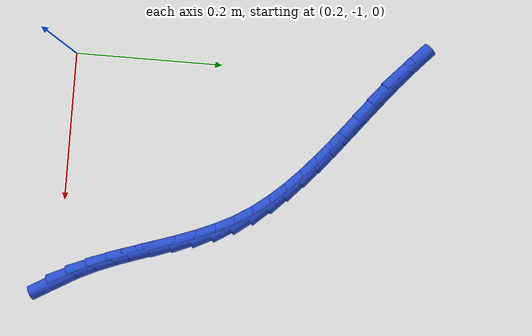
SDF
<sdf version="1.6">
 <world name="default">
  <model name="ground_plane">
   <static>1</static>
   <link name="link">
    <collision name="collision">
     <geometry><plane><normal>0 0 1</normal><size>100 100</size></plane></geometry>
     <surface><friction><ode><mu>100</mu><mu2>50</mu2></ode></friction></surface>
    </collision>
    <visual name="visual">
     <cast_shadows>0</cast_shadows>
     <geometry><plane><normal>0 0 1</normal><size>100 100</size></plane></geometry>
     <material>
      <script><uri>file://media/materials/scripts/gazebo.material</uri><name>Gazebo/WhiteGlow</name></script>
     </material>
    </visual>
   </link>
  </model>
  <model name="line">
   <link name="link_209">
    <pose>0.5097551487673551 -0.9991958877958447 0.01 0 1.57 -1.0467026871794707</pose>
    <collision name="collision">
     <geometry><cylinder><radius>0.01</radius><length>0.08</length></cylinder></geometry>
    </collision>
    <visual name="visual">
     <material>
      <script><name>Gazebo/Blue</name><uri>file://media/materials/scripts/gazebo.material</uri></script>
     </material>
     <geometry><cylinder><radius>0.01</radius><length>0.08</length></cylinder></geometry>
    </visual>
   </link>
   <link name="link_210">
    <pose>0.4956999686192209 -0.974879399457343 0.01 0 1.57 -1.1315190138815088</pose>
    <collision name="collision">
     <geometry><cylinder><radius>0.01</radius><length>0.08</length></cylinder></geometry>
    </collision>
    <visual name="visual">
     <material>
      <script><name>Gazebo/Blue</name><uri>file://media/materials/scripts/gazebo.material</uri></script>
     </material>
     <geometry><cylinder><radius>0.01</radius><length>0.08</length></cylinder></geometry>
    </visual>
   </link>
   <link name="link_211">
    <pose>0.4836788727896679 -0.949297046166394 0.01 0 1.57 -1.1930870745688233</pose>
    <collision name="collision">
     <geometry><cylinder><radius>0.01</radius><length>0.08</length></cylinder></geometry>
    </collision>
    <visual name="visual">
     <material>
      <script><name>Gazebo/Blue</name><uri>file://media/materials/scripts/gazebo.material</uri></script>
     </material>
     <geometry><cylinder><radius>0.01</radius><length>0.08</length></cylinder></geometry>
    </visual>
   </link>
   <link name="link_212">
    <pose>0.4731632100218835 -0.9227931382135477 0.01 0 1.57 -1.232133405977869</pose>
    <collision name="collision">
     <geometry><cylinder><radius>0.01</radius><length>0.08</length></cylinder></geometry>
    </collision>
    <visual name="visual">
     <material>
      <script><name>Gazebo/Blue</name><uri>file://media/materials/scripts/gazebo.material</uri></script>
     </material>
     <geometry><cylinder><radius>0.01</radius><length>0.08</length></cylinder></geometry>
    </visual>
   </link>
   <link name="link_213">
    <pose>0.4636243290590552 -0.8957119858893531 0.01 0 1.57 -1.2495053327067944</pose>
    <collision name="collision">
     <geometry><cylinder><radius>0.01</radius><length>0.08</length></cylinder></geometry>
    </collision>
    <visual name="visual">
     <material>
      <script><name>Gazebo/Blue</name><uri>file://media/materials/scripts/gazebo.material</uri></script>
     </material>
     <geometry><cylinder><radius>0.01</radius><length>0.08</length></cylinder></geometry>
    </visual>
   </link>
   <link name="link_214">
    <pose>0.4545335786443703 -0.8683978994843604 0.01 0 1.57 -1.2456187619635584</pose>
    <collision name="collision">
     <geometry><cylinder><radius>0.01</radius><length>0.08</length></cylinder></geometry>
    </collision>
    <visual name="visual">
     <material>
      <script><name>Gazebo/Blue</name><uri>file://media/materials/scripts/gazebo.material</uri></script>
     </material>
     <geometry><cylinder><radius>0.01</radius><length>0.08</length></cylinder></geometry>
    </visual>
   </link>
   <link name="link_215">
    <pose>0.44536230752101613 -0.8411951892891182 0.01 0 1.57 -1.220235018143926</pose>
    <collision name="collision">
     <geometry><cylinder><radius>0.01</radius><length>0.08</length></cylinder></geometry>
    </collision>
    <visual name="visual">
     <material>
      <script><name>Gazebo/Blue</name><uri>file://media/materials/scripts/gazebo.material</uri></script>
     </material>
     <geometry><cylinder><radius>0.01</radius><length>0.08</length></cylinder></geometry>
    </visual>
   </link>
   <link name="link_216">
    <pose>0.43558186443218044 -0.8144481655941768 0.01 0 1.57 -1.1724964323895928</pose>
    <collision name="collision">
     <geometry><cylinder><radius>0.01</radius><length>0.08</length></cylinder></geometry>
    </collision>
    <visual name="visual">
     <material>
      <script><name>Gazebo/Blue</name><uri>file://media/materials/scripts/gazebo.material</uri></script>
     </material>
     <geometry><cylinder><radius>0.01</radius><length>0.08</length></cylinder></geometry>
    </visual>
   </link>
   <link name="link_217">
    <pose>0.42466359812105037 -0.7885011386900852 0.01 0 1.57 -1.1012513638491461</pose>
    <collision name="collision">
     <geometry><cylinder><radius>0.01</radius><length>0.08</length></cylinder></geometry>
    </collision>
    <visual name="visual">
     <material>
      <script><name>Gazebo/Blue</name><uri>file://media/materials/scripts/gazebo.material</uri></script>
     </material>
     <geometry><cylinder><radius>0.01</radius><length>0.08</length></cylinder></geometry>
    </visual>
   </link>
   <link name="link_218">
    <pose>0.4120788573308135 -0.7636984188673928 0.01 0 1.57 -1.0089882269407238</pose>
    <collision name="collision">
     <geometry><cylinder><radius>0.01</radius><length>0.08</length></cylinder></geometry>
    </collision>
    <visual name="visual">
     <material>
      <script><name>Gazebo/Blue</name><uri>file://media/materials/scripts/gazebo.material</uri></script>
     </material>
     <geometry><cylinder><radius>0.01</radius><length>0.08</length></cylinder></geometry>
    </visual>
   </link>
   <link name="link_219">
    <pose>0.3973725271411363 -0.740335427469929 0.01 0 1.57 -0.9193255401807787</pose>
    <collision name="collision">
     <geometry><cylinder><radius>0.01</radius><length>0.08</length></cylinder></geometry>
    </collision>
    <visual name="visual">
     <material>
      <script><name>Gazebo/Blue</name><uri>file://media/materials/scripts/gazebo.material</uri></script>
     </material>
     <geometry><cylinder><radius>0.01</radius><length>0.08</length></cylinder></geometry>
    </visual>
   </link>
   <link name="link_220">
    <pose>0.38061453007004103 -0.7183585267425914 0.01 0 1.57 -0.8434583693113058</pose>
    <collision name="collision">
     <geometry><cylinder><radius>0.01</radius><length>0.08</length></cylinder></geometry>
    </collision>
    <visual name="visual">
     <material>
      <script><name>Gazebo/Blue</name><uri>file://media/materials/scripts/gazebo.material</uri></script>
     </material>
     <geometry><cylinder><radius>0.01</radius><length>0.08</length></cylinder></geometry>
    </visual>
   </link>
   <link name="link_221">
    <pose>0.3621030844040438 -0.6975623017246586 0.01 0 1.57 -0.7817750198654875</pose>
    <collision name="collision">
     <geometry><cylinder><radius>0.01</radius><length>0.08</length></cylinder></geometry>
    </collision>
    <visual name="visual">
     <material>
      <script><name>Gazebo/Blue</name><uri>file://media/materials/scripts/gazebo.material</uri></script>
     </material>
     <geometry><cylinder><radius>0.01</radius><length>0.08</length></cylinder></geometry>
    </visual>
   </link>
   <link name="link_222">
    <pose>0.3421373429879015 -0.677740716135795 0.01 0 1.57 -0.7339697446912747</pose>
    <collision name="collision">
     <geometry><cylinder><radius>0.01</radius><length>0.08</length></cylinder></geometry>
    </collision>
    <visual name="visual">
     <material>
      <script><name>Gazebo/Blue</name><uri>file://media/materials/scripts/gazebo.material</uri></script>
     </material>
     <geometry><cylinder><radius>0.01</radius><length>0.08</length></cylinder></geometry>
    </visual>
   </link>
   <link name="link_223">
    <pose>0.3210164586663712 -0.6586877336956667 0.01 0 1.57 -0.6994553997798755</pose>
    <collision name="collision">
     <geometry><cylinder><radius>0.01</radius><length>0.08</length></cylinder></geometry>
    </collision>
    <visual name="visual">
     <material>
      <script><name>Gazebo/Blue</name><uri>file://media/materials/scripts/gazebo.material</uri></script>
     </material>
     <geometry><cylinder><radius>0.01</radius><length>0.08</length></cylinder></geometry>
    </visual>
   </link>
   <link name="link_224">
    <pose>0.29903958428420985 -0.6401973181239382 0.01 0 1.57 -0.6776273634613164</pose>
    <collision name="collision">
     <geometry><cylinder><radius>0.01</radius><length>0.08</length></cylinder></geometry>
    </collision>
    <visual name="visual">
     <material>
      <script><name>Gazebo/Blue</name><uri>file://media/materials/scripts/gazebo.material</uri></script>
     </material>
     <geometry><cylinder><radius>0.01</radius><length>0.08</length></cylinder></geometry>
    </visual>
   </link>
   <link name="link_225">
    <pose>0.2765058726861747 -0.6220634331402756 0.01 0 1.57 -0.6680240232151223</pose>
    <collision name="collision">
     <geometry><cylinder><radius>0.01</radius><length>0.08</length></cylinder></geometry>
    </collision>
    <visual name="visual">
     <material>
      <script><name>Gazebo/Blue</name><uri>file://media/materials/scripts/gazebo.material</uri></script>
     </material>
     <geometry><cylinder><radius>0.01</radius><length>0.08</length></cylinder></geometry>
    </visual>
   </link>
   <link name="link_226">
    <pose>0.2537144767170226 -0.6040800424643437 0.01 0 1.57 -0.6704105578157536</pose>
    <collision name="collision">
     <geometry><cylinder><radius>0.01</radius><length>0.08</length></cylinder></geometry>
    </collision>
    <visual name="visual">
     <material>
      <script><name>Gazebo/Blue</name><uri>file://media/materials/scripts/gazebo.material</uri></script>
     </material>
     <geometry><cylinder><radius>0.01</radius><length>0.08</length></cylinder></geometry>
    </visual>
   </link>
   <link name="link_227">
    <pose>0.23096454922151086 -0.5860411098158084 0.01 0 1.57 -0.6848099360876642</pose>
    <collision name="collision">
     <geometry><cylinder><radius>0.01</radius><length>0.08</length></cylinder></geometry>
    </collision>
    <visual name="visual">
     <material>
      <script><name>Gazebo/Blue</name><uri>file://media/materials/scripts/gazebo.material</uri></script>
     </material>
     <geometry><cylinder><radius>0.01</radius><length>0.08</length></cylinder></geometry>
    </visual>
   </link>
   <link name="link_228">
    <pose>0.2085552430443963 -0.5677405989143345 0.01 0 1.57 -0.711493052677155</pose>
    <collision name="collision">
     <geometry><cylinder><radius>0.01</radius><length>0.08</length></cylinder></geometry>
    </collision>
    <visual name="visual">
     <material>
      <script><name>Gazebo/Blue</name><uri>file://media/materials/scripts/gazebo.material</uri></script>
     </material>
     <geometry><cylinder><radius>0.01</radius><length>0.08</length></cylinder></geometry>
    </visual>
   </link>
   <link name="link_229">
    <pose>0.18678571103043615 -0.5489724734795878 0.01 0 1.57 -0.7509259385147906</pose>
    <collision name="collision">
     <geometry><cylinder><radius>0.01</radius><length>0.08</length></cylinder></geometry>
    </collision>
    <visual name="visual">
     <material>
      <script><name>Gazebo/Blue</name><uri>file://media/materials/scripts/gazebo.material</uri></script>
     </material>
     <geometry><cylinder><radius>0.01</radius><length>0.08</length></cylinder></geometry>
    </visual>
   </link>
  </model>
 </world>
</sdf>
